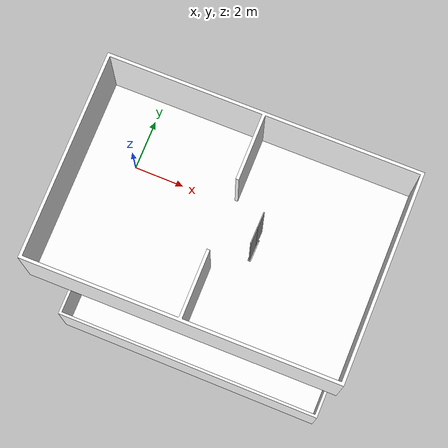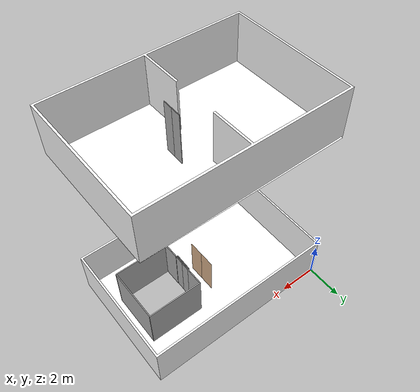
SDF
<sdf version="1.7">
 <world name="sim_world">
  <physics name="10ms" type="ode">
   <max_step_size>0.01</max_step_size>
   <real_time_factor>1.0</real_time_factor>
  </physics>
  <plugin filename="libgz-sim-physics-system.so" name="gz::sim::systems::Physics"/>
  <plugin filename="libgz-sim-user-commands-system.so" name="gz::sim::systems::UserCommands"/>
  <plugin filename="libgz-sim-scene-broadcaster-system.so" name="gz::sim::systems::SceneBroadcaster"/>
  <plugin filename="libdoor.so" name="door"/>
  <plugin filename="liblift.so" name="lift"/>
  <scene><ambient>1 1 1</ambient><background>0.8 0.8 0.8</background><grid>false</grid></scene>
  <light type="directional" name="sun">
   <pose>0 0 10 0 0 0</pose>
   <diffuse>1 1 1 1</diffuse>
   <specular>0.2 0.2 0.2 1</specular>
   <attenuation>
    <range>1000</range>
    <constant>0.09</constant>
    <linear>0.001</linear>
    <quadratic>0.001</quadratic>
   </attenuation>
   <direction>-0.5 0.1 -0.9</direction>
  </light>
  <model name="door1">
   <pose>5.000533333333333 -3.3023666666666665 0.0 0 0 1.5776753927825502</pose>
   <link name="right">
    <pose>0.4167265267001316 0 1.11 0 0 0</pose>
    <visual name="right_visual">
     <geometry><box><size>0.8234530534002632 0.03 2.2</size></box></geometry>
     <material>
      <ambient>0.5 0.25 0 0.6</ambient>
      <diffuse>0.5 0.25 0 0.6</diffuse>
      <pbr><metal><metalness>0.0</metalness></metal></pbr>
     </material>
    </visual>
    <collision name="right_collision">
     <geometry><box><size>0.8234530534002632 0.03 2.2</size></box></geometry>
     <surface><contact><collide_bitmask>0x02</collide_bitmask></contact></surface>
    </collision>
    <inertial>
     <mass>50.0</mass>
     <inertia><ixx>20.17041666666667</ixx><iyy>22.99197887980924</iyy><izz>2.82906221314257</izz></inertia>
    </inertial>
   </link>
   <joint name="right_joint" type="prismatic">
    <parent>world</parent>
    <child>right</child>
    <axis>
     <xyz>1 0 0</xyz>
     <limit><lower>0.0</lower><upper>0.8334530534002632</upper><effort>500.0</effort></limit>
    </axis>
   </joint>
   <link name="left">
    <pose>-0.4167265267001316 0 1.11 0 0 0</pose>
    <visual name="left_visual">
     <geometry><box><size>0.8234530534002632 0.03 2.2</size></box></geometry>
     <material>
      <ambient>0.5 0.25 0 0.6</ambient>
      <diffuse>0.5 0.25 0 0.6</diffuse>
      <pbr><metal><metalness>0.0</metalness></metal></pbr>
     </material>
    </visual>
    <collision name="left_collision">
     <geometry><box><size>0.8234530534002632 0.03 2.2</size></box></geometry>
     <surface><contact><collide_bitmask>0x02</collide_bitmask></contact></surface>
    </collision>
    <inertial>
     <mass>50.0</mass>
     <inertia><ixx>20.17041666666667</ixx><iyy>22.99197887980924</iyy><izz>2.82906221314257</izz></inertia>
    </inertial>
   </link>
   <joint name="left_joint" type="prismatic">
    <parent>world</parent>
    <child>left</child>
    <axis>
     <xyz>1 0 0</xyz>
     <limit><lower>-0.8334530534002632</lower><upper>0.0</upper><effort>500.0</effort></limit>
    </axis>
   </joint>
   <plugin name="register_component" filename="libregister_component.so">
    <component name="Door">
     <v_max_door>0.2</v_max_door>
     <a_max_door>0.2</a_max_door>
     <a_nom_door>0.08</a_nom_door>
     <dx_min_door>0.001</dx_min_door>
     <f_max_door>100.0</f_max_door>
     <ros_interface>true</ros_interface>
     <door name="door1" type="DoubleSlidingDoor" left_joint_name="left_joint" right_joint_name="right_joint"/>
    </component>
   </plugin>
  </model>
  <include><name>test1_L1</name><uri>model://test1_L1</uri></include>
  <include><name>test1_L2</name><uri>model://test1_L2</uri><pose>0 0 10.0 0 0 0</pose></include>
  <model name="ShaftDoor_lift_L1_door_lift">
   <pose>6.116666666666667 -3.3333333333333335 0.0 0 0 1.555</pose>
   <link name="right_door">
    <pose>0.25 0 1.25 0 0 0</pose>
    <visual name="right_door_visual">
     <geometry><box><size>0.5 0.03 2.5</size></box></geometry>
     <material>
      <ambient>0.5 0.5 0.5 1</ambient>
      <diffuse>0.7 0.7 0.7 1</diffuse>
      <specular>0.6 0.6 0.6 1</specular>
      <emissive>0.1 0.1 0.1 1</emissive>
     </material>
    </visual>
    <collision name="right_door_collision">
     <geometry><box><size>0.5 0.03 2.5</size></box></geometry>
     <surface><contact><collide_bitmask>0x02</collide_bitmask></contact></surface>
    </collision>
   </link>
   <link name="left_door">
    <pose>-0.25 0 1.25 0 0 0</pose>
    <visual name="left_door_visual">
     <geometry><box><size>0.5 0.03 2.5</size></box></geometry>
     <material>
      <ambient>0.5 0.5 0.5 1</ambient>
      <diffuse>0.7 0.7 0.7 1</diffuse>
      <specular>0.6 0.6 0.6 1</specular>
      <emissive>0.1 0.1 0.1 1</emissive>
     </material>
    </visual>
    <collision name="left_door_collision">
     <geometry><box><size>0.5 0.03 2.5</size></box></geometry>
     <surface><contact><collide_bitmask>0x02</collide_bitmask></contact></surface>
    </collision>
   </link>
   <joint name="right_joint" type="prismatic">
    <parent>world</parent>
    <child>right_door</child>
    <axis><xyz>1 0 0</xyz><limit><lower>0</lower><upper>0.5</upper></limit></axis>
   </joint>
   <joint name="left_joint" type="prismatic">
    <parent>world</parent>
    <child>left_door</child>
    <axis><xyz>1 0 0</xyz><limit><lower>-0.5</lower><upper>0</upper></limit></axis>
   </joint>
   <link name="ramp">
    <pose>0 0 -0.025 0 0 0</pose>
    <visual name="ramp_visual">
     <geometry><box><size>1.0 0.1 0.05</size></box></geometry>
     <material>
      <ambient>0.5 0.5 0.5 1</ambient>
      <diffuse>0.7 0.7 0.7 1</diffuse>
      <specular>0.6 0.6 0.6 1</specular>
      <emissive>0.1 0.1 0.1 1</emissive>
     </material>
    </visual>
    <collision name="ramp_collision">
     <geometry><box><size>1.0 0.1 0.05</size></box></geometry>
     <surface><contact><collide_bitmask>0x02</collide_bitmask></contact></surface>
    </collision>
   </link>
   <joint name="ramp_joint" type="fixed"><parent>world</parent><child>ramp</child></joint>
   <plugin name="register_component" filename="libregister_component.so">
    <component name="Door">
     <v_max_door>0.3</v_max_door>
     <a_max_door>0.2</a_max_door>
     <a_nom_door>0.1</a_nom_door>
     <dx_min_door>0.0001</dx_min_door>
     <f_max_door>35.0</f_max_door>
     <door left_joint_name="left_joint" name="ShaftDoor_lift_L1_door_lift" right_joint_name="right_joint" type="DoubleSlidingDoor"/>
    </component>
   </plugin>
  </model>
  <model name="ShaftDoor_lift_L2_door_lift">
   <pose>6.116666666666667 -3.3333333333333335 10.0 0 0 1.555</pose>
   <link name="right_door">
    <pose>0.25 0 1.25 0 0 0</pose>
    <visual name="right_door_visual">
     <geometry><box><size>0.5 0.03 2.5</size></box></geometry>
     <material>
      <ambient>0.5 0.5 0.5 1</ambient>
      <diffuse>0.7 0.7 0.7 1</diffuse>
      <specular>0.6 0.6 0.6 1</specular>
      <emissive>0.1 0.1 0.1 1</emissive>
     </material>
    </visual>
    <collision name="right_door_collision">
     <geometry><box><size>0.5 0.03 2.5</size></box></geometry>
     <surface><contact><collide_bitmask>0x02</collide_bitmask></contact></surface>
    </collision>
   </link>
   <link name="left_door">
    <pose>-0.25 0 1.25 0 0 0</pose>
    <visual name="left_door_visual">
     <geometry><box><size>0.5 0.03 2.5</size></box></geometry>
     <material>
      <ambient>0.5 0.5 0.5 1</ambient>
      <diffuse>0.7 0.7 0.7 1</diffuse>
      <specular>0.6 0.6 0.6 1</specular>
      <emissive>0.1 0.1 0.1 1</emissive>
     </material>
    </visual>
    <collision name="left_door_collision">
     <geometry><box><size>0.5 0.03 2.5</size></box></geometry>
     <surface><contact><collide_bitmask>0x02</collide_bitmask></contact></surface>
    </collision>
   </link>
   <joint name="right_joint" type="prismatic">
    <parent>world</parent>
    <child>right_door</child>
    <axis><xyz>1 0 0</xyz><limit><lower>0</lower><upper>0.5</upper></limit></axis>
   </joint>
   <joint name="left_joint" type="prismatic">
    <parent>world</parent>
    <child>left_door</child>
    <axis><xyz>1 0 0</xyz><limit><lower>-0.5</lower><upper>0</upper></limit></axis>
   </joint>
   <link name="ramp">
    <pose>0 0 -0.025 0 0 0</pose>
    <visual name="ramp_visual">
     <geometry><box><size>1.0 0.1 0.05</size></box></geometry>
     <material>
      <ambient>0.5 0.5 0.5 1</ambient>
      <diffuse>0.7 0.7 0.7 1</diffuse>
      <specular>0.6 0.6 0.6 1</specular>
      <emissive>0.1 0.1 0.1 1</emissive>
     </material>
    </visual>
    <collision name="ramp_collision">
     <geometry><box><size>1.0 0.1 0.05</size></box></geometry>
     <surface><contact><collide_bitmask>0x02</collide_bitmask></contact></surface>
    </collision>
   </link>
   <joint name="ramp_joint" type="fixed"><parent>world</parent><child>ramp</child></joint>
   <plugin name="register_component" filename="libregister_component.so">
    <component name="Door">
     <v_max_door>0.3</v_max_door>
     <a_max_door>0.2</a_max_door>
     <a_nom_door>0.1</a_nom_door>
     <dx_min_door>0.0001</dx_min_door>
     <f_max_door>35.0</f_max_door>
     <door left_joint_name="left_joint" name="ShaftDoor_lift_L2_door_lift" right_joint_name="right_joint" type="DoubleSlidingDoor"/>
    </component>
   </plugin>
  </model>
  <model name="lift">
   <link name="platform">
    <inertial><mass>1200</mass><inertia><ixx>900.25</ixx><iyy>900.25</iyy><izz>1800.0</izz></inertia></inertial>
    <visual name="floor_visual">
     <pose>0 0 -0.025 0 0 0</pose>
     <geometry><box><size>3.0 3.0 0.05</size></box></geometry>
     <material>
      <ambient>0.5 0.5 0.5 1</ambient>
      <diffuse>0.7 0.7 0.7 1</diffuse>
      <specular>0.6 0.6 0.6 1</specular>
      <emissive>0.1 0.1 0.1 1</emissive>
     </material>
    </visual>
    <collision name="floor_collision">
     <pose>0 0 -0.025 0 0 0</pose>
     <geometry><box><size>3.0 3.0 0.05</size></box></geometry>
     <surface><contact><collide_bitmask>0x01</collide_bitmask></contact></surface>
    </collision>
    <visual name="frontwall1_visual">
     <pose>0.0 1.475 1.25 0 0 0</pose>
     <geometry><box><size>3.0 0.05 2.5</size></box></geometry>
     <material>
      <ambient>0.5 0.5 0.5 1</ambient>
      <diffuse>0.7 0.7 0.7 1</diffuse>
      <specular>0.6 0.6 0.6 1</specular>
      <emissive>0.1 0.1 0.1 1</emissive>
     </material>
    </visual>
    <collision name="frontwall1_collision">
     <pose>0.0 1.475 1.25 0 0 0</pose>
     <geometry><box><size>3.0 0.05 2.5</size></box></geometry>
     <surface><contact><collide_bitmask>0x01</collide_bitmask></contact></surface>
    </collision>
    <visual name="backwall1_visual">
     <pose>0.0 -1.475 1.25 0 0 0</pose>
     <geometry><box><size>3.0 0.05 2.5</size></box></geometry>
     <material>
      <ambient>0.5 0.5 0.5 1</ambient>
      <diffuse>0.7 0.7 0.7 1</diffuse>
      <specular>0.6 0.6 0.6 1</specular>
      <emissive>0.1 0.1 0.1 1</emissive>
     </material>
    </visual>
    <collision name="backwall1_collision">
     <pose>0.0 -1.475 1.25 0 0 0</pose>
     <geometry><box><size>3.0 0.05 2.5</size></box></geometry>
     <surface><contact><collide_bitmask>0x01</collide_bitmask></contact></surface>
    </collision>
    <visual name="leftwall1_visual">
     <pose>-1.475 -0.975 1.25 0 0 1.5707963267948966</pose>
     <geometry><box><size>0.95 0.05 2.5</size></box></geometry>
     <material>
      <ambient>0.5 0.5 0.5 1</ambient>
      <diffuse>0.7 0.7 0.7 1</diffuse>
      <specular>0.6 0.6 0.6 1</specular>
      <emissive>0.1 0.1 0.1 1</emissive>
     </material>
    </visual>
    <collision name="leftwall1_collision">
     <pose>-1.475 -0.975 1.25 0 0 1.5707963267948966</pose>
     <geometry><box><size>0.95 0.05 2.5</size></box></geometry>
     <surface><contact><collide_bitmask>0x01</collide_bitmask></contact></surface>
    </collision>
    <visual name="leftwall2_visual">
     <pose>-1.475 0.975 1.25 0 0 1.5707963267948966</pose>
     <geometry><box><size>0.95 0.05 2.5</size></box></geometry>
     <material>
      <ambient>0.5 0.5 0.5 1</ambient>
      <diffuse>0.7 0.7 0.7 1</diffuse>
      <specular>0.6 0.6 0.6 1</specular>
      <emissive>0.1 0.1 0.1 1</emissive>
     </material>
    </visual>
    <collision name="leftwall2_collision">
     <pose>-1.475 0.975 1.25 0 0 1.5707963267948966</pose>
     <geometry><box><size>0.95 0.05 2.5</size></box></geometry>
     <surface><contact><collide_bitmask>0x01</collide_bitmask></contact></surface>
    </collision>
    <visual name="rightwall1_visual">
     <pose>1.475 0.0 1.25 0 0 1.5707963267948966</pose>
     <geometry><box><size>2.9 0.05 2.5</size></box></geometry>
     <material>
      <ambient>0.5 0.5 0.5 1</ambient>
      <diffuse>0.7 0.7 0.7 1</diffuse>
      <specular>0.6 0.6 0.6 1</specular>
      <emissive>0.1 0.1 0.1 1</emissive>
     </material>
    </visual>
    <collision name="rightwall1_collision">
     <pose>1.475 0.0 1.25 0 0 1.5707963267948966</pose>
     <geometry><box><size>2.9 0.05 2.5</size></box></geometry>
     <surface><contact><collide_bitmask>0x01</collide_bitmask></contact></surface>
    </collision>
   </link>
   <joint name="cabin_joint" type="prismatic">
    <parent>world</parent>
    <child>platform</child>
    <axis><xyz>0 0 1</xyz></axis>
   </joint>
   <model name="CabinDoor_lift_door_lift">
    <pose>-1.475 0.0 0 0 0 1.555</pose>
    <link name="right_door">
     <pose>0.25 0 1.25 0 0 0</pose>
     <visual name="right_door_visual">
      <geometry><box><size>0.5 0.03 2.5</size></box></geometry>
      <material>
       <ambient>0.5 0.5 0.5 1</ambient>
       <diffuse>0.7 0.7 0.7 1</diffuse>
       <specular>0.6 0.6 0.6 1</specular>
       <emissive>0.1 0.1 0.1 1</emissive>
      </material>
     </visual>
     <collision name="right_door_collision">
      <geometry><box><size>0.5 0.03 2.5</size></box></geometry>
      <surface><contact><collide_bitmask>0x02</collide_bitmask></contact></surface>
     </collision>
    </link>
    <link name="left_door">
     <pose>-0.25 0 1.25 0 0 0</pose>
     <visual name="left_door_visual">
      <geometry><box><size>0.5 0.03 2.5</size></box></geometry>
      <material>
       <ambient>0.5 0.5 0.5 1</ambient>
       <diffuse>0.7 0.7 0.7 1</diffuse>
       <specular>0.6 0.6 0.6 1</specular>
       <emissive>0.1 0.1 0.1 1</emissive>
      </material>
     </visual>
     <collision name="left_door_collision">
      <geometry><box><size>0.5 0.03 2.5</size></box></geometry>
      <surface><contact><collide_bitmask>0x02</collide_bitmask></contact></surface>
     </collision>
    </link>
    <plugin name="register_component" filename="libregister_component.so">
     <component name="Door">
      <v_max_door>0.3</v_max_door>
      <a_max_door>0.2</a_max_door>
      <a_nom_door>0.1</a_nom_door>
      <dx_min_door>0.0001</dx_min_door>
      <f_max_door>35.0</f_max_door>
      <door left_joint_name="CabinDoor_lift_door_lift_left_joint" name="CabinDoor_lift_door_lift" right_joint_name="CabinDoor_lift_door_lift_right_joint" type="DoubleSlidingDoor"/>
     </component>
    </plugin>
   </model>
   <joint name="CabinDoor_lift_door_lift_right_joint" type="prismatic">
    <parent>platform</parent>
    <child>CabinDoor_lift_door_lift::right_door</child>
    <axis><xyz>1 0 0</xyz><limit><lower>0</lower><upper>0.5</upper></limit></axis>
   </joint>
   <joint name="CabinDoor_lift_door_lift_left_joint" type="prismatic">
    <parent>platform</parent>
    <child>CabinDoor_lift_door_lift::left_door</child>
    <axis><xyz>1 0 0</xyz><limit><lower>-0.5</lower><upper>0</upper></limit></axis>
   </joint>
   <plugin name="register_component" filename="libregister_component.so">
    <component name="Lift">
     <lift_name>lift</lift_name>
     <floor name="L1" elevation="0.0">
      <door_pair cabin_door="CabinDoor_lift_door_lift" shaft_door="ShaftDoor_lift_L1_door_lift"/>
     </floor>
     <floor name="L2" elevation="10.0">
      <door_pair cabin_door="CabinDoor_lift_door_lift" shaft_door="ShaftDoor_lift_L2_door_lift"/>
     </floor>
     <initial_floor>L1</initial_floor>
     <v_max_cabin>2.0</v_max_cabin>
     <a_max_cabin>1.2</a_max_cabin>
     <a_nom_cabin>1.0</a_nom_cabin>
     <dx_min_cabin>0.001</dx_min_cabin>
     <f_max_cabin>25323.0</f_max_cabin>
     <cabin_joint_name>cabin_joint</cabin_joint_name>
    </component>
   </plugin>
   <pose>7.666666666666667 -3.3333333333333335 0 0 0 0.0</pose>
  </model>
  <rmf_charger_waypoints name="charger_waypoints">
   <rmf_vertex name="tinyRobot1_charger" x="3.3333333333333335" y="-3.3333333333333335" level="L1"/>
  </rmf_charger_waypoints>
 </world>
</sdf>

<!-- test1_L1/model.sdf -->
<sdf version="1.7">
  <model name="test1_L1">
    <static>true</static>
    <link name="floor_1">
      <visual name="visual">
        <geometry>
          <mesh>
            <uri>model://test1_L1/meshes/floor_1.obj</uri>
          </mesh>
        </geometry>
        <material>
          <diffuse>1.0 1.0 1.0</diffuse>
          <specular>0.1 0.1 0.1</specular>
          <pbr>
            <metal>
              <metalness>0.0</metalness>
              <albedo_map>model://test1_L1/meshes/blue_linoleum.png</albedo_map>
            </metal>
          </pbr>
          <script>
            <uri>model://test1_L1/meshes/</uri>
            <name>floor_1_Diffuse</name>
          </script>
        </material>
      </visual>
      <collision name="collision">
        <geometry>
          <mesh>
            <uri>model://test1_L1/meshes/floor_1.obj</uri>
          </mesh>
        </geometry>
        <surface>
          <contact>
            <collide_bitmask>0x01</collide_bitmask>
          </contact>
        </surface>
      </collision>
    </link>
    <link name="wall_1">
      <visual name="wall_1">
        <geometry>
          <mesh>
            <uri>model://test1_L1/meshes/wall_1.obj</uri>
          </mesh>
        </geometry>
        <transparency>0.0</transparency>
        <material>
          <diffuse>1.0 1.0 1.0</diffuse>
          <specular>0.1 0.1 0.1</specular>
          <pbr>
            <metal>
              <metalness>0.0</metalness>
              <albedo_map>model://test1_L1/meshes/default.png</albedo_map>
            </metal>
          </pbr>
          <script>
            <uri>model://test1_L1/meshes/</uri>
            <name>wall_1_Diffuse</name>
          </script>
        </material>
      </visual>
      <collision name="collision">
        <geometry>
          <mesh>
            <uri>model://test1_L1/meshes/wall_1.obj</uri>
          </mesh>
        </geometry>
        <surface>
          <contact>
            <collide_bitmask>0x01</collide_bitmask>
          </contact>
        </surface>
      </collision>
      <pose>-0.05000000000000021 -6.731733333333334 0 0 0 0</pose>
    </link>
  </model>
</sdf>

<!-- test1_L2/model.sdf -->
<sdf version="1.7">
  <model name="test1_L2">
    <static>true</static>
    <link name="floor_1">
      <visual name="visual">
        <geometry>
          <mesh>
            <uri>model://test1_L2/meshes/floor_1.obj</uri>
          </mesh>
        </geometry>
        <material>
          <diffuse>1.0 1.0 1.0</diffuse>
          <specular>0.1 0.1 0.1</specular>
          <pbr>
            <metal>
              <metalness>0.0</metalness>
              <albedo_map>model://test1_L2/meshes/blue_linoleum.png</albedo_map>
            </metal>
          </pbr>
          <script>
            <uri>model://test1_L2/meshes/</uri>
            <name>floor_1_Diffuse</name>
          </script>
        </material>
      </visual>
      <collision name="collision">
        <geometry>
          <mesh>
            <uri>model://test1_L2/meshes/floor_1.obj</uri>
          </mesh>
        </geometry>
        <surface>
          <contact>
            <collide_bitmask>0x01</collide_bitmask>
          </contact>
        </surface>
      </collision>
    </link>
    <link name="wall_1">
      <visual name="wall_1">
        <geometry>
          <mesh>
            <uri>model://test1_L2/meshes/wall_1.obj</uri>
          </mesh>
        </geometry>
        <transparency>0.0</transparency>
        <material>
          <diffuse>1.0 1.0 1.0</diffuse>
          <specular>0.1 0.1 0.1</specular>
          <pbr>
            <metal>
              <metalness>0.0</metalness>
              <albedo_map>model://test1_L2/meshes/default.png</albedo_map>
            </metal>
          </pbr>
          <script>
            <uri>model://test1_L2/meshes/</uri>
            <name>wall_1_Diffuse</name>
          </script>
        </material>
      </visual>
      <collision name="collision">
        <geometry>
          <mesh>
            <uri>model://test1_L2/meshes/wall_1.obj</uri>
          </mesh>
        </geometry>
        <surface>
          <contact>
            <collide_bitmask>0x01</collide_bitmask>
          </contact>
        </surface>
      </collision>
      <pose>-0.00985688822967938 -6.75349753303393 0 0 0 0</pose>
    </link>
  </model>
</sdf>
